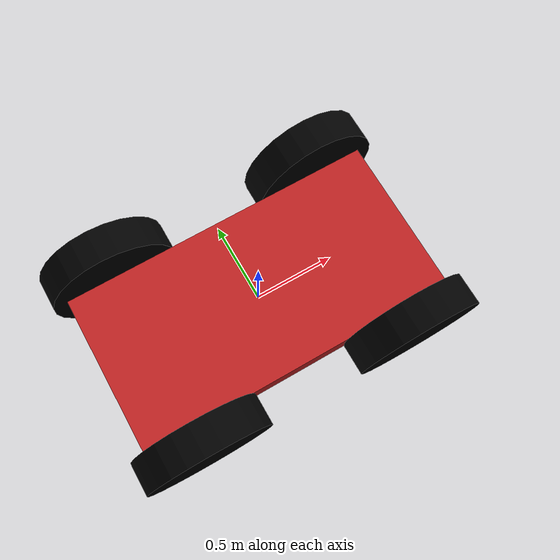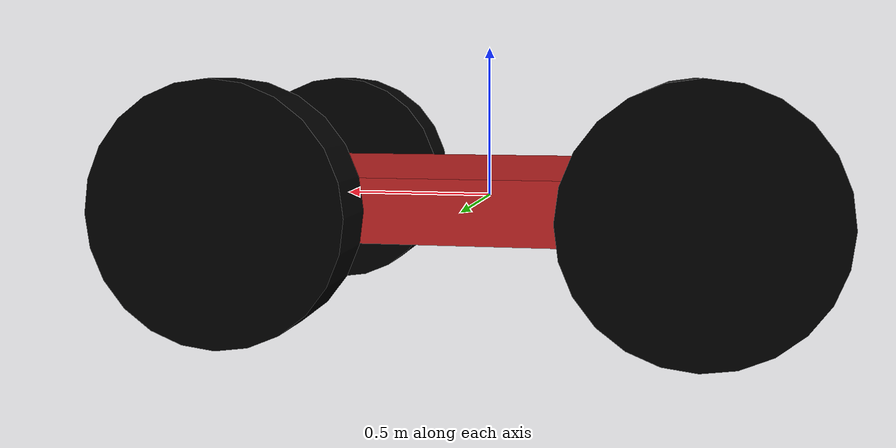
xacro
<?xml version="1.0"?>
<robot name="car" xmlns:xacro="http://www.ros.org/wiki/xacro">

<!-- Include materials-->

<material name="Black">
   <color rgba="0.0 0.0 0.0 1.0"/>
</material>

<material name="Red">
   <color rgba="1.0 0 0 1.0"/>
</material>

<!-- constants -->
<xacro:property name="deg_to_rad" value="0.017453"/>
<xacro:property name="PI" value="3.14"/>

<!-- chassis property -->
<xacro:property name="chassis_len" value="2"/>
<xacro:property name="chassis_width" value="1"/>
<xacro:property name="chassis_height" value="0.2"/>

<!-- wheel property -->
<xacro:property name="wheel_radius" value="0.4"/>
<xacro:property name="wheel_width" value="0.2"/>
<xacro:property name="wheel_height" value="0.8"/>
<xacro:property name="wheel_mass" value="1"/>

<!-- Macro for computing cylinder inertia, useful for dynamic simulations -->
<xacro:macro name="cylinder_inertia" params ="m r h">
  <inertial>
   <mass value="${m}"/>
   <inertia ixx="${m*(3*r*r+h*h)/12}"  ixy="0.0" ixz="0.0"
            iyy="${m*(3*r*r+h*h)/12}"  iyz= "0.0"
            izz="${m*r*r/2}"/>
   </inertial>
</xacro:macro>

<!-- Macro to provide a simple inertial matrix for parts -->
<xacro:macro name= "inertial_matrix" params="mass">
  <inertial>
    <mass value="${mass}"/>
      <inertia ixx="1.0" ixy="0.0"
               iyy="1.0" iyz="0.0"
               izz="1.0" ixz="0.0"/>
   </inertial>
 </xacro:macro>

<!--transmission block-->

<xacro:macro name="Transmission_block" params="joint_name">
   <transmission name="${joint_name}_t">
    <type>transmission_interface/SimpleTransmission</type>
     <joint name="${joint_name}">
       <hardwareInterface>PositionJointInterface</hardwareInterface>
     </joint>
    <actuator name="${joint_name}_m">
      <mechanicalReduction>1</mechanicalReduction>
     </actuator>
    </transmission>
 </xacro:macro>

<!-- chassis-->

 <link name="chassis">
    <visual>
      <origin rpy="0 0 0" xyz="0 0 0"/>
      <geometry>
         <box size="${chassis_len} ${chassis_width} ${chassis_height}"/>
       </geometry>
     </visual>
    <collision>
      <origin rpy="0 0 0" xyz="0 0 0"/>
      <geometry>
          <box size="${chassis_len} ${chassis_width} ${chassis_height}"/>
      </geometry>
    </collision>
   <xacro:inertial_matrix mass="1"/>
 </link>

 <gazebo reference="chassis">
    <turnGravityOff>false</turnGravityOff>
    <material>Gazebo/Red</material>
  </gazebo>

<!-- wheels-->

<xacro:macro name="wheel" params= "prefix suffix X Y Z">
  <link name= "${prefix}_${suffix}_w">
    <visual>
     <origin rpy= "${PI/2} 0 0" xyz= "0 0 0"/>
     <geometry><cylinder length="${wheel_width}" radius= "${wheel_radius}"/></geometry>
     <material name= "Black"/>
    </visual>
    <collision>
     <origin rpy= "${PI/2} 0 0" xyz= "0 0 0"/>
     <geometry><cylinder length="${wheel_width}" radius= "${wheel_radius}"/></geometry>
    </collision>
  <xacro:cylinder_inertia m="${wheel_mass}" r="${wheel_radius}" h="${wheel_width}"/>
  </link>

<!-- friction parameters-->
<gazebo reference ="${prefix}_${suffix}_w">
    <mu1 value="1000000.0"/>
    <mu2 value="1000000.0"/>
    <kp value="1000000.0"/>
    <kd value= "1000000.0"/>
    <material>Gazebo/Black</material>
</gazebo>

<joint name="${prefix}_${suffix}_w_j" type="continuous">
  <parent link= "chassis"/>
  <child link= "${prefix}_${suffix}_w"/>
  <origin xyz= "${X} ${Y} ${Z}" rpy="0 0 0"/>
  <axis xyz="0 1 0"/>
  <limit effort= "5" velocity="10000"/>
  <dynamics damping="0.0" friction="0.0"/>
</joint>

 <transmission name="${prefix}_${suffix}_w_t">
      <type>transmission_interface/SimpleTransmission</type>
      <actuator name="${prefix}_${suffix}_w_m">
        <hardwareInterface>EffortJointInterface</hardwareInterface>
        <mechanicalReduction>1</mechanicalReduction>
      </actuator>
      <joint name="${prefix}_${suffix}_w_j">
        <hardwareInterface>hardware_interface/VelocityJointInterface</hardwareInterface>
      </joint>
 </transmission>
</xacro:macro>

<xacro:wheel prefix="r" suffix="f" X="0.7" Y="-0.6" Z="0"/>
<xacro:wheel prefix="r" suffix="r" X="-0.7" Y="-0.6" Z="0"/>
<xacro:wheel prefix="l" suffix="f" X="0.7" Y="0.6" Z="0"/>
<xacro:wheel prefix="l" suffix="r" X="-0.7" Y="0.6" Z="0"/>

<!-- ros_control plugin-->

<gazebo>
  <plugin name="gazebo_ros_control" filename= "libgazebo_ros_control.so">
   <robotNamespace>/</robotNamespace>
  </plugin>
</gazebo>

</robot>
